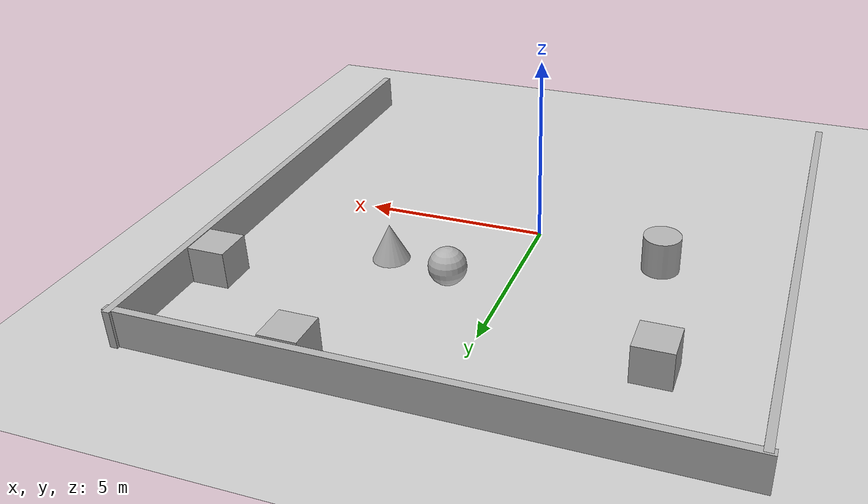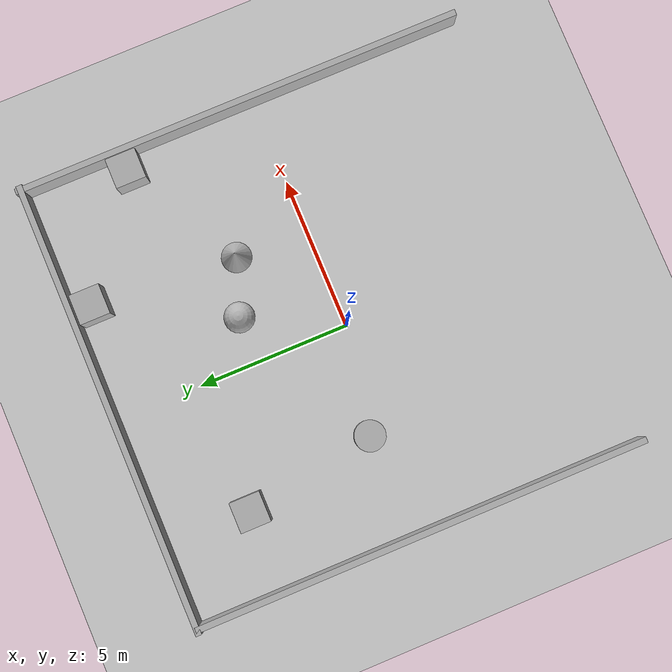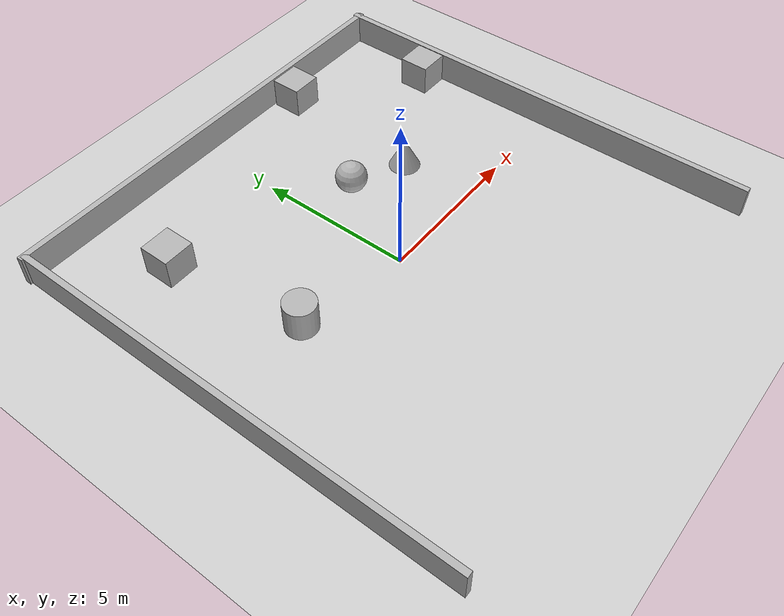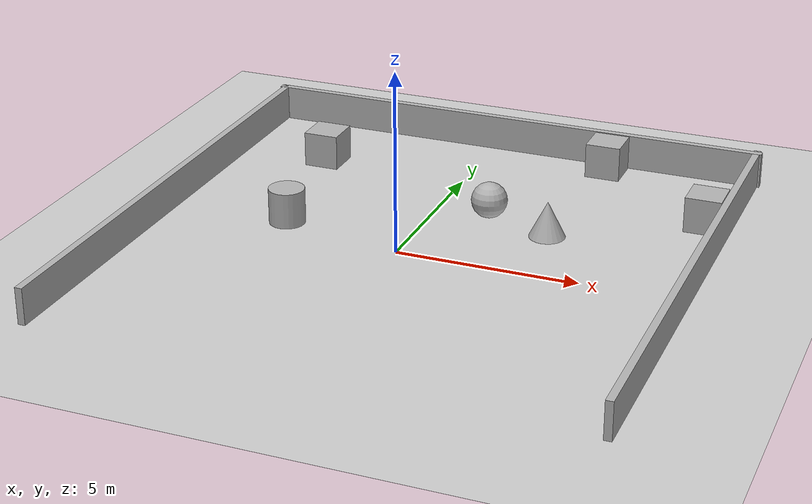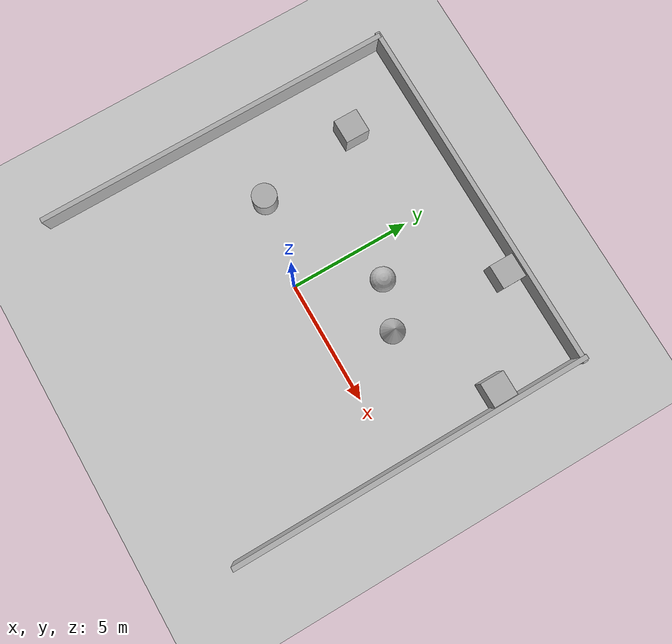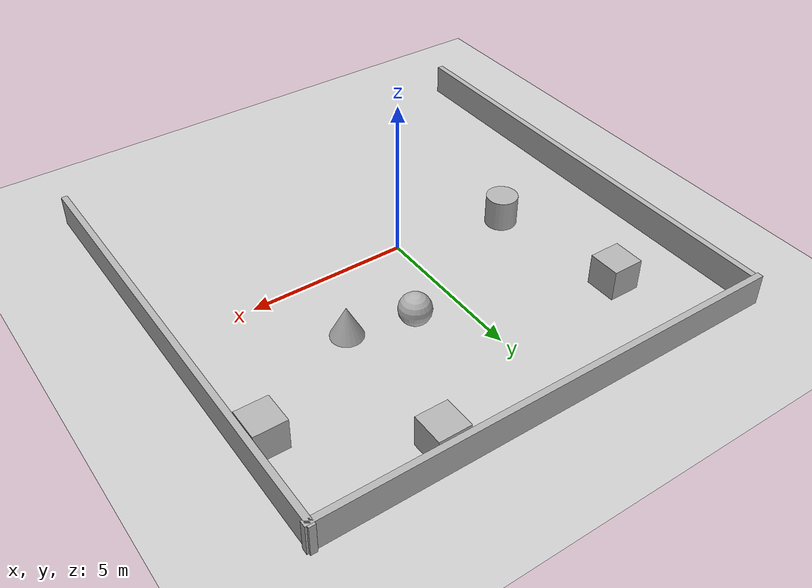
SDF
<sdf version="1.10">
 <world name="ackermann_steering">
  <model name="ground_plane">
   <static>true</static>
   <link name="link">
    <collision name="collision">
     <geometry><plane><normal>0 0 1</normal><size>100 100</size></plane></geometry>
     <surface>
      <friction>
       <ode><mu>50</mu></ode>
       <bullet><friction>1</friction><rolling_friction>0.10000000000000001</rolling_friction></bullet>
      </friction>
     </surface>
    </collision>
    <visual name="visual">
     <geometry><plane><normal>0 0 1</normal><size>100 100</size></plane></geometry>
     <material>
      <ambient>0.800000012 0.800000012 0.800000012 1</ambient>
      <diffuse>0.800000012 0.800000012 0.800000012 1</diffuse>
      <specular>0.800000012 0.800000012 0.800000012 1</specular>
     </material>
    </visual>
    <inertial>
     <mass>1</mass>
     <inertia><ixx>1</ixx><ixy>0</ixy><ixz>0</ixz><iyy>1</iyy><iyz>0</iyz><izz>1</izz></inertia>
    </inertial>
   </link>
  </model>
  <model name="box">
   <pose>7.800382137298584 0.49509599804878235 0.5 6.228769976978208e-22 9.3279699610216593e-22 -3.6315500810484947e-22</pose>
   <link name="box_link">
    <inertial>
     <inertia><ixx>0.16666</ixx><ixy>0</ixy><ixz>0</ixz><iyy>0.16666</iyy><iyz>0</iyz><izz>0.16666</izz></inertia>
     <mass>1</mass>
    </inertial>
    <collision name="box_collision"><geometry><box><size>1 1 1</size></box></geometry></collision>
    <visual name="box_visual">
     <geometry><box><size>0.20000000000000001 15 1</size></box></geometry>
     <material>
      <ambient>0.300000012 0.300000012 0.300000012 1</ambient>
      <diffuse>0.699999988 0.699999988 0.699999988 1</diffuse>
      <specular>1 1 1 1</specular>
     </material>
    </visual>
   </link>
   <static>false</static>
  </model>
  <model name="cone">
   <pose>3.3743710029734211 2.4005945437368075 0.49999999993296756 5.2539673238603227e-17 -7.7132841034849224e-10 -2.2042306062451038e-22</pose>
   <link name="cone_link">
    <inertial>
     <inertia>
      <ixx>0.074999999999999997</ixx>
      <ixy>0</ixy>
      <ixz>0</ixz>
      <iyy>0.074999999999999997</iyy>
      <iyz>0</iyz>
      <izz>0.074999999999999997</izz>
     </inertia>
     <mass>1</mass>
    </inertial>
    <collision name="cone_collision">
     <geometry><cone><radius>0.5</radius><length>1</length></cone></geometry>
    </collision>
    <visual name="cone_visual">
     <geometry><cone><radius>0.5</radius><length>1</length></cone></geometry>
     <material>
      <ambient>0.300000012 0.300000012 0.300000012 1</ambient>
      <diffuse>0.699999988 0.699999988 0.699999988 1</diffuse>
      <specular>1 1 1 1</specular>
     </material>
    </visual>
   </link>
   <static>false</static>
  </model>
  <model name="sphere">
   <pose>1.5058648756451825 3.0318351959274739 0.499999999902001 0 0 0</pose>
   <link name="sphere_link">
    <inertial>
     <inertia>
      <ixx>0.10000000000000001</ixx>
      <ixy>0</ixy>
      <ixz>0</ixz>
      <iyy>0.10000000000000001</iyy>
      <iyz>0</iyz>
      <izz>0.10000000000000001</izz>
     </inertia>
     <mass>1</mass>
    </inertial>
    <collision name="sphere_collision"><geometry><sphere><radius>0.5</radius></sphere></geometry></collision>
    <visual name="sphere_visual">
     <geometry><sphere><radius>0.5</radius></sphere></geometry>
     <material>
      <ambient>0.300000012 0.300000012 0.300000012 1</ambient>
      <diffuse>0.699999988 0.699999988 0.699999988 1</diffuse>
      <specular>1 1 1 1</specular>
     </material>
    </visual>
   </link>
   <static>false</static>
  </model>
  <model name="box_1">
   <pose>-6.8792605400085449 0.38332599401473999 0.5 6.228769976978208e-22 9.3279699610216593e-22 -3.6315500810484947e-22</pose>
   <link name="box_link">
    <inertial>
     <inertia><ixx>0.16666</ixx><ixy>0</ixy><ixz>0</ixz><iyy>0.16666</iyy><iyz>0</iyz><izz>0.16666</izz></inertia>
     <mass>1</mass>
    </inertial>
    <collision name="box_collision"><geometry><box><size>1 1 1</size></box></geometry></collision>
    <visual name="box_visual">
     <geometry><box><size>0.20000000000000001 15 1</size></box></geometry>
     <material>
      <ambient>0.300000012 0.300000012 0.300000012 1</ambient>
      <diffuse>0.699999988 0.699999988 0.699999988 1</diffuse>
      <specular>1 1 1 1</specular>
     </material>
    </visual>
   </link>
   <static>false</static>
  </model>
  <model name="box_1_2">
   <pose>0.45514560321221698 7.8314778378200387 0.5 6.228769976978208e-22 9.3279699610216574e-22 1.5699999999999998</pose>
   <link name="box_link">
    <inertial>
     <inertia><ixx>0.16666</ixx><ixy>0</ixy><ixz>0</ixz><iyy>0.16666</iyy><iyz>0</iyz><izz>0.16666</izz></inertia>
     <mass>1</mass>
    </inertial>
    <collision name="box_collision"><geometry><box><size>1 1 1</size></box></geometry></collision>
    <visual name="box_visual">
     <geometry><box><size>0.20000000000000001 15 1</size></box></geometry>
     <material>
      <ambient>0.300000012 0.300000012 0.300000012 1</ambient>
      <diffuse>0.699999988 0.699999988 0.699999988 1</diffuse>
      <specular>1 1 1 1</specular>
     </material>
    </visual>
   </link>
   <static>false</static>
  </model>
  <model name="box_2">
   <pose>-4.2164361544988953 4.9963596877845333 0.5 0 0 0</pose>
   <link name="box_link">
    <inertial>
     <inertia><ixx>0.16666</ixx><ixy>0</ixy><ixz>0</ixz><iyy>0.16666</iyy><iyz>0</iyz><izz>0.16666</izz></inertia>
     <mass>1</mass>
    </inertial>
    <collision name="box_collision"><geometry><box><size>1 1 1</size></box></geometry></collision>
    <visual name="box_visual">
     <geometry><box><size>1 1 1</size></box></geometry>
     <material>
      <ambient>0.300000012 0.300000012 0.300000012 1</ambient>
      <diffuse>0.699999988 0.699999988 0.699999988 1</diffuse>
      <specular>1 1 1 1</specular>
     </material>
    </visual>
   </link>
   <static>false</static>
  </model>
  <model name="cylinder_1">
   <pose>-3.4886216569454644 0.6968935397628675 0.5 0 0 0</pose>
   <link name="cylinder_link">
    <inertial>
     <inertia>
      <ixx>0.14580000000000001</ixx>
      <ixy>0</ixy>
      <ixz>0</ixz>
      <iyy>0.14580000000000001</iyy>
      <iyz>0</iyz>
      <izz>0.125</izz>
     </inertia>
     <mass>1</mass>
    </inertial>
    <collision name="cylinder_collision">
     <geometry><cylinder><radius>0.5</radius><length>1</length></cylinder></geometry>
    </collision>
    <visual name="cylinder_visual">
     <geometry><cylinder><radius>0.5</radius><length>1</length></cylinder></geometry>
     <material>
      <ambient>0.300000012 0.300000012 0.300000012 1</ambient>
      <diffuse>0.699999988 0.699999988 0.699999988 1</diffuse>
      <specular>1 1 1 1</specular>
     </material>
    </visual>
   </link>
   <static>false</static>
  </model>
  <model name="box_3">
   <pose>3.6282069394424337 7.1671866397353066 0.5 0 0 0</pose>
   <link name="box_link">
    <inertial>
     <inertia><ixx>0.16666</ixx><ixy>0</ixy><ixz>0</ixz><iyy>0.16666</iyy><iyz>0</iyz><izz>0.16666</izz></inertia>
     <mass>1</mass>
    </inertial>
    <collision name="box_collision"><geometry><box><size>1 1 1</size></box></geometry></collision>
    <visual name="box_visual">
     <geometry><box><size>1 1 1</size></box></geometry>
     <material>
      <ambient>0.300000012 0.300000012 0.300000012 1</ambient>
      <diffuse>0.699999988 0.699999988 0.699999988 1</diffuse>
      <specular>1 1 1 1</specular>
     </material>
    </visual>
   </link>
   <static>false</static>
  </model>
  <model name="box_4">
   <pose>7.178296202142608 4.5308485767955844 0.5 0 0 0</pose>
   <link name="box_link">
    <inertial>
     <inertia><ixx>0.16666</ixx><ixy>0</ixy><ixz>0</ixz><iyy>0.16666</iyy><iyz>0</iyz><izz>0.16666</izz></inertia>
     <mass>1</mass>
    </inertial>
    <collision name="box_collision"><geometry><box><size>1 1 1</size></box></geometry></collision>
    <visual name="box_visual">
     <geometry><box><size>1 1 1</size></box></geometry>
     <material>
      <ambient>0.300000012 0.300000012 0.300000012 1</ambient>
      <diffuse>0.699999988 0.699999988 0.699999988 1</diffuse>
      <specular>1 1 1 1</specular>
     </material>
    </visual>
   </link>
   <static>false</static>
  </model>
 </world>
</sdf>
